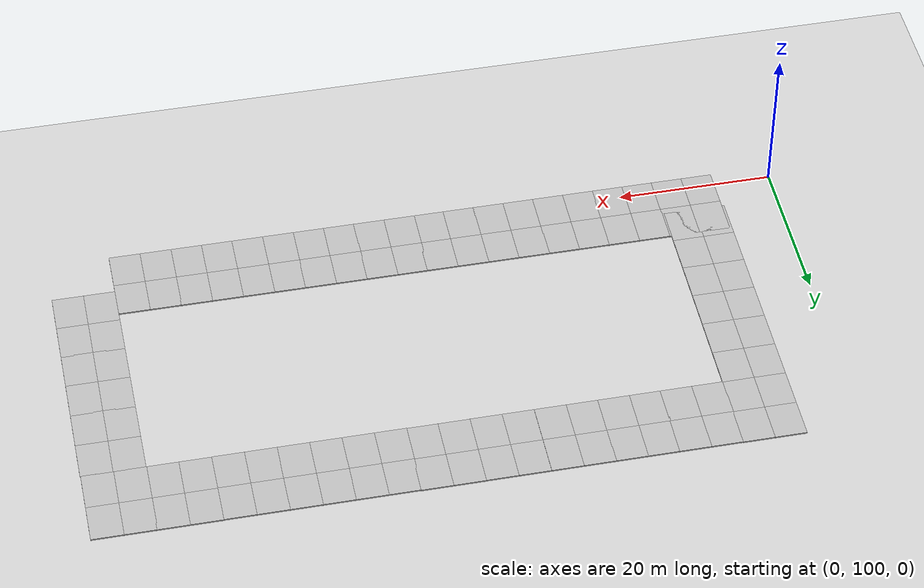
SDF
<sdf version="1.7">
 <world name="default">
  <model name="ground_plane">
   <static>1</static>
   <link name="link">
    <collision name="collision">
     <geometry><plane><normal>0 0 1</normal><size>100 100</size></plane></geometry>
     <surface>
      <contact><collide_bitmask>65535</collide_bitmask></contact>
      <friction><ode><mu>100</mu><mu2>50</mu2></ode></friction>
     </surface>
    </collision>
    <visual name="visual">
     <cast_shadows>0</cast_shadows>
     <geometry><plane><normal>0 0 1</normal><size>100 100</size></plane></geometry>
     <material>
      <script><uri>file://media/materials/scripts/gazebo.material</uri><name>Gazebo/Grey</name></script>
     </material>
    </visual>
   </link>
  </model>
  <model name="mud_box_22">
   <static>1</static>
   <link name="link">
    <collision name="collision"><geometry><box><size>8 10 0.2</size></box></geometry></collision>
    <visual name="visual_1">
     <pose>-2 2.5 0 0 -0 0</pose>
     <cast_shadows>0</cast_shadows>
     <geometry><box><size>4 5 0.2</size></box></geometry>
     <material>
      <script>
       <uri>model://mud_box/materials/scripts</uri>
       <uri>model://mud_box/materials/textures</uri>
       <name>vrc/mud</name>
      </script>
     </material>
    </visual>
    <visual name="visual_2">
     <pose>2 2.5 0 0 -0 0</pose>
     <cast_shadows>0</cast_shadows>
     <geometry><box><size>4 5 0.2</size></box></geometry>
     <material>
      <script>
       <uri>model://mud_box/materials/scripts</uri>
       <uri>model://mud_box/materials/textures</uri>
       <name>vrc/mud</name>
      </script>
     </material>
    </visual>
    <visual name="visual_3">
     <pose>2 -2.5 0 0 -0 0</pose>
     <cast_shadows>0</cast_shadows>
     <geometry><box><size>4 5 0.2</size></box></geometry>
     <material>
      <script>
       <uri>model://mud_box/materials/scripts</uri>
       <uri>model://mud_box/materials/textures</uri>
       <name>vrc/mud</name>
      </script>
     </material>
    </visual>
    <visual name="visual_4">
     <pose>-2 -2.5 0 0 -0 0</pose>
     <cast_shadows>0</cast_shadows>
     <geometry><box><size>4 5 0.2</size></box></geometry>
     <material>
      <script>
       <uri>model://mud_box/materials/scripts</uri>
       <uri>model://mud_box/materials/textures</uri>
       <name>vrc/mud</name>
      </script>
     </material>
    </visual>
   </link>
   <pose>90.5504 109.191 0 0 -0 0</pose>
  </model>
  <model name="mud_box_23">
   <static>1</static>
   <link name="link">
    <collision name="collision"><geometry><box><size>8 10 0.2</size></box></geometry></collision>
    <visual name="visual_1">
     <pose>-2 2.5 0 0 -0 0</pose>
     <cast_shadows>0</cast_shadows>
     <geometry><box><size>4 5 0.2</size></box></geometry>
     <material>
      <script>
       <uri>model://mud_box/materials/scripts</uri>
       <uri>model://mud_box/materials/textures</uri>
       <name>vrc/mud</name>
      </script>
     </material>
    </visual>
    <visual name="visual_2">
     <pose>2 2.5 0 0 -0 0</pose>
     <cast_shadows>0</cast_shadows>
     <geometry><box><size>4 5 0.2</size></box></geometry>
     <material>
      <script>
       <uri>model://mud_box/materials/scripts</uri>
       <uri>model://mud_box/materials/textures</uri>
       <name>vrc/mud</name>
      </script>
     </material>
    </visual>
    <visual name="visual_3">
     <pose>2 -2.5 0 0 -0 0</pose>
     <cast_shadows>0</cast_shadows>
     <geometry><box><size>4 5 0.2</size></box></geometry>
     <material>
      <script>
       <uri>model://mud_box/materials/scripts</uri>
       <uri>model://mud_box/materials/textures</uri>
       <name>vrc/mud</name>
      </script>
     </material>
    </visual>
    <visual name="visual_4">
     <pose>-2 -2.5 0 0 -0 0</pose>
     <cast_shadows>0</cast_shadows>
     <geometry><box><size>4 5 0.2</size></box></geometry>
     <material>
      <script>
       <uri>model://mud_box/materials/scripts</uri>
       <uri>model://mud_box/materials/textures</uri>
       <name>vrc/mud</name>
      </script>
     </material>
    </visual>
   </link>
   <pose>90.5504 119.079 0 0 -0 0</pose>
  </model>
  <model name="mud_box_24">
   <static>1</static>
   <link name="link">
    <collision name="collision"><geometry><box><size>8 10 0.2</size></box></geometry></collision>
    <visual name="visual_1">
     <pose>-2 2.5 0 0 -0 0</pose>
     <cast_shadows>0</cast_shadows>
     <geometry><box><size>4 5 0.2</size></box></geometry>
     <material>
      <script>
       <uri>model://mud_box/materials/scripts</uri>
       <uri>model://mud_box/materials/textures</uri>
       <name>vrc/mud</name>
      </script>
     </material>
    </visual>
    <visual name="visual_2">
     <pose>2 2.5 0 0 -0 0</pose>
     <cast_shadows>0</cast_shadows>
     <geometry><box><size>4 5 0.2</size></box></geometry>
     <material>
      <script>
       <uri>model://mud_box/materials/scripts</uri>
       <uri>model://mud_box/materials/textures</uri>
       <name>vrc/mud</name>
      </script>
     </material>
    </visual>
    <visual name="visual_3">
     <pose>2 -2.5 0 0 -0 0</pose>
     <cast_shadows>0</cast_shadows>
     <geometry><box><size>4 5 0.2</size></box></geometry>
     <material>
      <script>
       <uri>model://mud_box/materials/scripts</uri>
       <uri>model://mud_box/materials/textures</uri>
       <name>vrc/mud</name>
      </script>
     </material>
    </visual>
    <visual name="visual_4">
     <pose>-2 -2.5 0 0 -0 0</pose>
     <cast_shadows>0</cast_shadows>
     <geometry><box><size>4 5 0.2</size></box></geometry>
     <material>
      <script>
       <uri>model://mud_box/materials/scripts</uri>
       <uri>model://mud_box/materials/textures</uri>
       <name>vrc/mud</name>
      </script>
     </material>
    </visual>
   </link>
   <pose>90.5505 128.967 0 0 -0 0</pose>
  </model>
  <model name="mud_box_25">
   <static>1</static>
   <link name="link">
    <collision name="collision"><geometry><box><size>8 10 0.2</size></box></geometry></collision>
    <visual name="visual_1">
     <pose>-2 2.5 0 0 -0 0</pose>
     <cast_shadows>0</cast_shadows>
     <geometry><box><size>4 5 0.2</size></box></geometry>
     <material>
      <script>
       <uri>model://mud_box/materials/scripts</uri>
       <uri>model://mud_box/materials/textures</uri>
       <name>vrc/mud</name>
      </script>
     </material>
    </visual>
    <visual name="visual_2">
     <pose>2 2.5 0 0 -0 0</pose>
     <cast_shadows>0</cast_shadows>
     <geometry><box><size>4 5 0.2</size></box></geometry>
     <material>
      <script>
       <uri>model://mud_box/materials/scripts</uri>
       <uri>model://mud_box/materials/textures</uri>
       <name>vrc/mud</name>
      </script>
     </material>
    </visual>
    <visual name="visual_3">
     <pose>2 -2.5 0 0 -0 0</pose>
     <cast_shadows>0</cast_shadows>
     <geometry><box><size>4 5 0.2</size></box></geometry>
     <material>
      <script>
       <uri>model://mud_box/materials/scripts</uri>
       <uri>model://mud_box/materials/textures</uri>
       <name>vrc/mud</name>
      </script>
     </material>
    </visual>
    <visual name="visual_4">
     <pose>-2 -2.5 0 0 -0 0</pose>
     <cast_shadows>0</cast_shadows>
     <geometry><box><size>4 5 0.2</size></box></geometry>
     <material>
      <script>
       <uri>model://mud_box/materials/scripts</uri>
       <uri>model://mud_box/materials/textures</uri>
       <name>vrc/mud</name>
      </script>
     </material>
    </visual>
   </link>
   <pose>90.4905 138.933 0 0 -0 0</pose>
  </model>
  <model name="mud_box_26">
   <static>1</static>
   <link name="link">
    <collision name="collision"><geometry><box><size>8 10 0.2</size></box></geometry></collision>
    <visual name="visual_1">
     <pose>-2 2.5 0 0 -0 0</pose>
     <cast_shadows>0</cast_shadows>
     <geometry><box><size>4 5 0.2</size></box></geometry>
     <material>
      <script>
       <uri>model://mud_box/materials/scripts</uri>
       <uri>model://mud_box/materials/textures</uri>
       <name>vrc/mud</name>
      </script>
     </material>
    </visual>
    <visual name="visual_2">
     <pose>2 2.5 0 0 -0 0</pose>
     <cast_shadows>0</cast_shadows>
     <geometry><box><size>4 5 0.2</size></box></geometry>
     <material>
      <script>
       <uri>model://mud_box/materials/scripts</uri>
       <uri>model://mud_box/materials/textures</uri>
       <name>vrc/mud</name>
      </script>
     </material>
    </visual>
    <visual name="visual_3">
     <pose>2 -2.5 0 0 -0 0</pose>
     <cast_shadows>0</cast_shadows>
     <geometry><box><size>4 5 0.2</size></box></geometry>
     <material>
      <script>
       <uri>model://mud_box/materials/scripts</uri>
       <uri>model://mud_box/materials/textures</uri>
       <name>vrc/mud</name>
      </script>
     </material>
    </visual>
    <visual name="visual_4">
     <pose>-2 -2.5 0 0 -0 0</pose>
     <cast_shadows>0</cast_shadows>
     <geometry><box><size>4 5 0.2</size></box></geometry>
     <material>
      <script>
       <uri>model://mud_box/materials/scripts</uri>
       <uri>model://mud_box/materials/textures</uri>
       <name>vrc/mud</name>
      </script>
     </material>
    </visual>
   </link>
   <pose>82.5965 138.933 0 0 -0 0</pose>
  </model>
  <model name="mud_box_27">
   <static>1</static>
   <link name="link">
    <collision name="collision"><geometry><box><size>8 10 0.2</size></box></geometry></collision>
    <visual name="visual_1">
     <pose>-2 2.5 0 0 -0 0</pose>
     <cast_shadows>0</cast_shadows>
     <geometry><box><size>4 5 0.2</size></box></geometry>
     <material>
      <script>
       <uri>model://mud_box/materials/scripts</uri>
       <uri>model://mud_box/materials/textures</uri>
       <name>vrc/mud</name>
      </script>
     </material>
    </visual>
    <visual name="visual_2">
     <pose>2 2.5 0 0 -0 0</pose>
     <cast_shadows>0</cast_shadows>
     <geometry><box><size>4 5 0.2</size></box></geometry>
     <material>
      <script>
       <uri>model://mud_box/materials/scripts</uri>
       <uri>model://mud_box/materials/textures</uri>
       <name>vrc/mud</name>
      </script>
     </material>
    </visual>
    <visual name="visual_3">
     <pose>2 -2.5 0 0 -0 0</pose>
     <cast_shadows>0</cast_shadows>
     <geometry><box><size>4 5 0.2</size></box></geometry>
     <material>
      <script>
       <uri>model://mud_box/materials/scripts</uri>
       <uri>model://mud_box/materials/textures</uri>
       <name>vrc/mud</name>
      </script>
     </material>
    </visual>
    <visual name="visual_4">
     <pose>-2 -2.5 0 0 -0 0</pose>
     <cast_shadows>0</cast_shadows>
     <geometry><box><size>4 5 0.2</size></box></geometry>
     <material>
      <script>
       <uri>model://mud_box/materials/scripts</uri>
       <uri>model://mud_box/materials/textures</uri>
       <name>vrc/mud</name>
      </script>
     </material>
    </visual>
   </link>
   <pose>74.6075 138.901 0 0 -0 0</pose>
  </model>
  <model name="mud_box_28">
   <static>1</static>
   <link name="link">
    <collision name="collision"><geometry><box><size>8 10 0.2</size></box></geometry></collision>
    <visual name="visual_1">
     <pose>-2 2.5 0 0 -0 0</pose>
     <cast_shadows>0</cast_shadows>
     <geometry><box><size>4 5 0.2</size></box></geometry>
     <material>
      <script>
       <uri>model://mud_box/materials/scripts</uri>
       <uri>model://mud_box/materials/textures</uri>
       <name>vrc/mud</name>
      </script>
     </material>
    </visual>
    <visual name="visual_2">
     <pose>2 2.5 0 0 -0 0</pose>
     <cast_shadows>0</cast_shadows>
     <geometry><box><size>4 5 0.2</size></box></geometry>
     <material>
      <script>
       <uri>model://mud_box/materials/scripts</uri>
       <uri>model://mud_box/materials/textures</uri>
       <name>vrc/mud</name>
      </script>
     </material>
    </visual>
    <visual name="visual_3">
     <pose>2 -2.5 0 0 -0 0</pose>
     <cast_shadows>0</cast_shadows>
     <geometry><box><size>4 5 0.2</size></box></geometry>
     <material>
      <script>
       <uri>model://mud_box/materials/scripts</uri>
       <uri>model://mud_box/materials/textures</uri>
       <name>vrc/mud</name>
      </script>
     </material>
    </visual>
    <visual name="visual_4">
     <pose>-2 -2.5 0 0 -0 0</pose>
     <cast_shadows>0</cast_shadows>
     <geometry><box><size>4 5 0.2</size></box></geometry>
     <material>
      <script>
       <uri>model://mud_box/materials/scripts</uri>
       <uri>model://mud_box/materials/textures</uri>
       <name>vrc/mud</name>
      </script>
     </material>
    </visual>
   </link>
   <pose>66.6342 138.901 0 0 -0 0</pose>
  </model>
  <model name="mud_box_29">
   <static>1</static>
   <link name="link">
    <collision name="collision"><geometry><box><size>8 10 0.2</size></box></geometry></collision>
    <visual name="visual_1">
     <pose>-2 2.5 0 0 -0 0</pose>
     <cast_shadows>0</cast_shadows>
     <geometry><box><size>4 5 0.2</size></box></geometry>
     <material>
      <script>
       <uri>model://mud_box/materials/scripts</uri>
       <uri>model://mud_box/materials/textures</uri>
       <name>vrc/mud</name>
      </script>
     </material>
    </visual>
    <visual name="visual_2">
     <pose>2 2.5 0 0 -0 0</pose>
     <cast_shadows>0</cast_shadows>
     <geometry><box><size>4 5 0.2</size></box></geometry>
     <material>
      <script>
       <uri>model://mud_box/materials/scripts</uri>
       <uri>model://mud_box/materials/textures</uri>
       <name>vrc/mud</name>
      </script>
     </material>
    </visual>
    <visual name="visual_3">
     <pose>2 -2.5 0 0 -0 0</pose>
     <cast_shadows>0</cast_shadows>
     <geometry><box><size>4 5 0.2</size></box></geometry>
     <material>
      <script>
       <uri>model://mud_box/materials/scripts</uri>
       <uri>model://mud_box/materials/textures</uri>
       <name>vrc/mud</name>
      </script>
     </material>
    </visual>
    <visual name="visual_4">
     <pose>-2 -2.5 0 0 -0 0</pose>
     <cast_shadows>0</cast_shadows>
     <geometry><box><size>4 5 0.2</size></box></geometry>
     <material>
      <script>
       <uri>model://mud_box/materials/scripts</uri>
       <uri>model://mud_box/materials/textures</uri>
       <name>vrc/mud</name>
      </script>
     </material>
    </visual>
   </link>
   <pose>58.6609 138.901 0 0 -0 0</pose>
  </model>
  <model name="mud_box_30">
   <static>1</static>
   <link name="link">
    <collision name="collision"><geometry><box><size>8 10 0.2</size></box></geometry></collision>
    <visual name="visual_1">
     <pose>-2 2.5 0 0 -0 0</pose>
     <cast_shadows>0</cast_shadows>
     <geometry><box><size>4 5 0.2</size></box></geometry>
     <material>
      <script>
       <uri>model://mud_box/materials/scripts</uri>
       <uri>model://mud_box/materials/textures</uri>
       <name>vrc/mud</name>
      </script>
     </material>
    </visual>
    <visual name="visual_2">
     <pose>2 2.5 0 0 -0 0</pose>
     <cast_shadows>0</cast_shadows>
     <geometry><box><size>4 5 0.2</size></box></geometry>
     <material>
      <script>
       <uri>model://mud_box/materials/scripts</uri>
       <uri>model://mud_box/materials/textures</uri>
       <name>vrc/mud</name>
      </script>
     </material>
    </visual>
    <visual name="visual_3">
     <pose>2 -2.5 0 0 -0 0</pose>
     <cast_shadows>0</cast_shadows>
     <geometry><box><size>4 5 0.2</size></box></geometry>
     <material>
      <script>
       <uri>model://mud_box/materials/scripts</uri>
       <uri>model://mud_box/materials/textures</uri>
       <name>vrc/mud</name>
      </script>
     </material>
    </visual>
    <visual name="visual_4">
     <pose>-2 -2.5 0 0 -0 0</pose>
     <cast_shadows>0</cast_shadows>
     <geometry><box><size>4 5 0.2</size></box></geometry>
     <material>
      <script>
       <uri>model://mud_box/materials/scripts</uri>
       <uri>model://mud_box/materials/textures</uri>
       <name>vrc/mud</name>
      </script>
     </material>
    </visual>
   </link>
   <pose>50.8141 138.949 0 0 -0 0</pose>
  </model>
  <model name="mud_box_31">
   <static>1</static>
   <link name="link">
    <collision name="collision"><geometry><box><size>8 10 0.2</size></box></geometry></collision>
    <visual name="visual_1">
     <pose>-2 2.5 0 0 -0 0</pose>
     <cast_shadows>0</cast_shadows>
     <geometry><box><size>4 5 0.2</size></box></geometry>
     <material>
      <script>
       <uri>model://mud_box/materials/scripts</uri>
       <uri>model://mud_box/materials/textures</uri>
       <name>vrc/mud</name>
      </script>
     </material>
    </visual>
    <visual name="visual_2">
     <pose>2 2.5 0 0 -0 0</pose>
     <cast_shadows>0</cast_shadows>
     <geometry><box><size>4 5 0.2</size></box></geometry>
     <material>
      <script>
       <uri>model://mud_box/materials/scripts</uri>
       <uri>model://mud_box/materials/textures</uri>
       <name>vrc/mud</name>
      </script>
     </material>
    </visual>
    <visual name="visual_3">
     <pose>2 -2.5 0 0 -0 0</pose>
     <cast_shadows>0</cast_shadows>
     <geometry><box><size>4 5 0.2</size></box></geometry>
     <material>
      <script>
       <uri>model://mud_box/materials/scripts</uri>
       <uri>model://mud_box/materials/textures</uri>
       <name>vrc/mud</name>
      </script>
     </material>
    </visual>
    <visual name="visual_4">
     <pose>-2 -2.5 0 0 -0 0</pose>
     <cast_shadows>0</cast_shadows>
     <geometry><box><size>4 5 0.2</size></box></geometry>
     <material>
      <script>
       <uri>model://mud_box/materials/scripts</uri>
       <uri>model://mud_box/materials/textures</uri>
       <name>vrc/mud</name>
      </script>
     </material>
    </visual>
   </link>
   <pose>42.8315 138.932 0 0 -0 0</pose>
  </model>
  <model name="mud_box_32">
   <static>1</static>
   <link name="link">
    <collision name="collision"><geometry><box><size>8 10 0.2</size></box></geometry></collision>
    <visual name="visual_1">
     <pose>-2 2.5 0 0 -0 0</pose>
     <cast_shadows>0</cast_shadows>
     <geometry><box><size>4 5 0.2</size></box></geometry>
     <material>
      <script>
       <uri>model://mud_box/materials/scripts</uri>
       <uri>model://mud_box/materials/textures</uri>
       <name>vrc/mud</name>
      </script>
     </material>
    </visual>
    <visual name="visual_2">
     <pose>2 2.5 0 0 -0 0</pose>
     <cast_shadows>0</cast_shadows>
     <geometry><box><size>4 5 0.2</size></box></geometry>
     <material>
      <script>
       <uri>model://mud_box/materials/scripts</uri>
       <uri>model://mud_box/materials/textures</uri>
       <name>vrc/mud</name>
      </script>
     </material>
    </visual>
    <visual name="visual_3">
     <pose>2 -2.5 0 0 -0 0</pose>
     <cast_shadows>0</cast_shadows>
     <geometry><box><size>4 5 0.2</size></box></geometry>
     <material>
      <script>
       <uri>model://mud_box/materials/scripts</uri>
       <uri>model://mud_box/materials/textures</uri>
       <name>vrc/mud</name>
      </script>
     </material>
    </visual>
    <visual name="visual_4">
     <pose>-2 -2.5 0 0 -0 0</pose>
     <cast_shadows>0</cast_shadows>
     <geometry><box><size>4 5 0.2</size></box></geometry>
     <material>
      <script>
       <uri>model://mud_box/materials/scripts</uri>
       <uri>model://mud_box/materials/textures</uri>
       <name>vrc/mud</name>
      </script>
     </material>
    </visual>
   </link>
   <pose>34.8194 138.932 0 0 -0 0</pose>
  </model>
  <model name="mud_box_33">
   <static>1</static>
   <link name="link">
    <collision name="collision"><geometry><box><size>8 10 0.2</size></box></geometry></collision>
    <visual name="visual_1">
     <pose>-2 2.5 0 0 -0 0</pose>
     <cast_shadows>0</cast_shadows>
     <geometry><box><size>4 5 0.2</size></box></geometry>
     <material>
      <script>
       <uri>model://mud_box/materials/scripts</uri>
       <uri>model://mud_box/materials/textures</uri>
       <name>vrc/mud</name>
      </script>
     </material>
    </visual>
    <visual name="visual_2">
     <pose>2 2.5 0 0 -0 0</pose>
     <cast_shadows>0</cast_shadows>
     <geometry><box><size>4 5 0.2</size></box></geometry>
     <material>
      <script>
       <uri>model://mud_box/materials/scripts</uri>
       <uri>model://mud_box/materials/textures</uri>
       <name>vrc/mud</name>
      </script>
     </material>
    </visual>
    <visual name="visual_3">
     <pose>2 -2.5 0 0 -0 0</pose>
     <cast_shadows>0</cast_shadows>
     <geometry><box><size>4 5 0.2</size></box></geometry>
     <material>
      <script>
       <uri>model://mud_box/materials/scripts</uri>
       <uri>model://mud_box/materials/textures</uri>
       <name>vrc/mud</name>
      </script>
     </material>
    </visual>
    <visual name="visual_4">
     <pose>-2 -2.5 0 0 -0 0</pose>
     <cast_shadows>0</cast_shadows>
     <geometry><box><size>4 5 0.2</size></box></geometry>
     <material>
      <script>
       <uri>model://mud_box/materials/scripts</uri>
       <uri>model://mud_box/materials/textures</uri>
       <name>vrc/mud</name>
      </script>
     </material>
    </visual>
   </link>
   <pose>26.8757 138.932 0 0 -0 0</pose>
  </model>
  <model name="mud_box_34">
   <static>1</static>
   <link name="link">
    <collision name="collision"><geometry><box><size>8 10 0.2</size></box></geometry></collision>
    <visual name="visual_1">
     <pose>-2 2.5 0 0 -0 0</pose>
     <cast_shadows>0</cast_shadows>
     <geometry><box><size>4 5 0.2</size></box></geometry>
     <material>
      <script>
       <uri>model://mud_box/materials/scripts</uri>
       <uri>model://mud_box/materials/textures</uri>
       <name>vrc/mud</name>
      </script>
     </material>
    </visual>
    <visual name="visual_2">
     <pose>2 2.5 0 0 -0 0</pose>
     <cast_shadows>0</cast_shadows>
     <geometry><box><size>4 5 0.2</size></box></geometry>
     <material>
      <script>
       <uri>model://mud_box/materials/scripts</uri>
       <uri>model://mud_box/materials/textures</uri>
       <name>vrc/mud</name>
      </script>
     </material>
    </visual>
    <visual name="visual_3">
     <pose>2 -2.5 0 0 -0 0</pose>
     <cast_shadows>0</cast_shadows>
     <geometry><box><size>4 5 0.2</size></box></geometry>
     <material>
      <script>
       <uri>model://mud_box/materials/scripts</uri>
       <uri>model://mud_box/materials/textures</uri>
       <name>vrc/mud</name>
      </script>
     </material>
    </visual>
    <visual name="visual_4">
     <pose>-2 -2.5 0 0 -0 0</pose>
     <cast_shadows>0</cast_shadows>
     <geometry><box><size>4 5 0.2</size></box></geometry>
     <material>
      <script>
       <uri>model://mud_box/materials/scripts</uri>
       <uri>model://mud_box/materials/textures</uri>
       <name>vrc/mud</name>
      </script>
     </material>
    </visual>
   </link>
   <pose>19.0006 138.932 0 0 -0 0</pose>
  </model>
  <model name="mud_box_35">
   <static>1</static>
   <link name="link">
    <collision name="collision"><geometry><box><size>8 10 0.2</size></box></geometry></collision>
    <visual name="visual_1">
     <pose>-2 2.5 0 0 -0 0</pose>
     <cast_shadows>0</cast_shadows>
     <geometry><box><size>4 5 0.2</size></box></geometry>
     <material>
      <script>
       <uri>model://mud_box/materials/scripts</uri>
       <uri>model://mud_box/materials/textures</uri>
       <name>vrc/mud</name>
      </script>
     </material>
    </visual>
    <visual name="visual_2">
     <pose>2 2.5 0 0 -0 0</pose>
     <cast_shadows>0</cast_shadows>
     <geometry><box><size>4 5 0.2</size></box></geometry>
     <material>
      <script>
       <uri>model://mud_box/materials/scripts</uri>
       <uri>model://mud_box/materials/textures</uri>
       <name>vrc/mud</name>
      </script>
     </material>
    </visual>
    <visual name="visual_3">
     <pose>2 -2.5 0 0 -0 0</pose>
     <cast_shadows>0</cast_shadows>
     <geometry><box><size>4 5 0.2</size></box></geometry>
     <material>
      <script>
       <uri>model://mud_box/materials/scripts</uri>
       <uri>model://mud_box/materials/textures</uri>
       <name>vrc/mud</name>
      </script>
     </material>
    </visual>
    <visual name="visual_4">
     <pose>-2 -2.5 0 0 -0 0</pose>
     <cast_shadows>0</cast_shadows>
     <geometry><box><size>4 5 0.2</size></box></geometry>
     <material>
      <script>
       <uri>model://mud_box/materials/scripts</uri>
       <uri>model://mud_box/materials/textures</uri>
       <name>vrc/mud</name>
      </script>
     </material>
    </visual>
   </link>
   <pose>82.5697 103.151 0 0 -0 0</pose>
  </model>
  <model name="mud_box_36">
   <static>1</static>
   <link name="link">
    <collision name="collision"><geometry><box><size>8 10 0.2</size></box></geometry></collision>
    <visual name="visual_1">
     <pose>-2 2.5 0 0 -0 0</pose>
     <cast_shadows>0</cast_shadows>
     <geometry><box><size>4 5 0.2</size></box></geometry>
     <material>
      <script>
       <uri>model://mud_box/materials/scripts</uri>
       <uri>model://mud_box/materials/textures</uri>
       <name>vrc/mud</name>
      </script>
     </material>
    </visual>
    <visual name="visual_2">
     <pose>2 2.5 0 0 -0 0</pose>
     <cast_shadows>0</cast_shadows>
     <geometry><box><size>4 5 0.2</size></box></geometry>
     <material>
      <script>
       <uri>model://mud_box/materials/scripts</uri>
       <uri>model://mud_box/materials/textures</uri>
       <name>vrc/mud</name>
      </script>
     </material>
    </visual>
    <visual name="visual_3">
     <pose>2 -2.5 0 0 -0 0</pose>
     <cast_shadows>0</cast_shadows>
     <geometry><box><size>4 5 0.2</size></box></geometry>
     <material>
      <script>
       <uri>model://mud_box/materials/scripts</uri>
       <uri>model://mud_box/materials/textures</uri>
       <name>vrc/mud</name>
      </script>
     </material>
    </visual>
    <visual name="visual_4">
     <pose>-2 -2.5 0 0 -0 0</pose>
     <cast_shadows>0</cast_shadows>
     <geometry><box><size>4 5 0.2</size></box></geometry>
     <material>
      <script>
       <uri>model://mud_box/materials/scripts</uri>
       <uri>model://mud_box/materials/textures</uri>
       <name>vrc/mud</name>
      </script>
     </material>
    </visual>
   </link>
   <pose>74.6429 103.151 0 0 -0 0</pose>
  </model>
  <model name="mud_box_37">
   <static>1</static>
   <link name="link">
    <collision name="collision"><geometry><box><size>8 10 0.2</size></box></geometry></collision>
    <visual name="visual_1">
     <pose>-2 2.5 0 0 -0 0</pose>
     <cast_shadows>0</cast_shadows>
     <geometry><box><size>4 5 0.2</size></box></geometry>
     <material>
      <script>
       <uri>model://mud_box/materials/scripts</uri>
       <uri>model://mud_box/materials/textures</uri>
       <name>vrc/mud</name>
      </script>
     </material>
    </visual>
    <visual name="visual_2">
     <pose>2 2.5 0 0 -0 0</pose>
     <cast_shadows>0</cast_shadows>
     <geometry><box><size>4 5 0.2</size></box></geometry>
     <material>
      <script>
       <uri>model://mud_box/materials/scripts</uri>
       <uri>model://mud_box/materials/textures</uri>
       <name>vrc/mud</name>
      </script>
     </material>
    </visual>
    <visual name="visual_3">
     <pose>2 -2.5 0 0 -0 0</pose>
     <cast_shadows>0</cast_shadows>
     <geometry><box><size>4 5 0.2</size></box></geometry>
     <material>
      <script>
       <uri>model://mud_box/materials/scripts</uri>
       <uri>model://mud_box/materials/textures</uri>
       <name>vrc/mud</name>
      </script>
     </material>
    </visual>
    <visual name="visual_4">
     <pose>-2 -2.5 0 0 -0 0</pose>
     <cast_shadows>0</cast_shadows>
     <geometry><box><size>4 5 0.2</size></box></geometry>
     <material>
      <script>
       <uri>model://mud_box/materials/scripts</uri>
       <uri>model://mud_box/materials/textures</uri>
       <name>vrc/mud</name>
      </script>
     </material>
    </visual>
   </link>
   <pose>66.7161 103.151 0 0 -0 0</pose>
  </model>
  <model name="mud_box_38">
   <static>1</static>
   <link name="link">
    <collision name="collision"><geometry><box><size>8 10 0.2</size></box></geometry></collision>
    <visual name="visual_1">
     <pose>-2 2.5 0 0 -0 0</pose>
     <cast_shadows>0</cast_shadows>
     <geometry><box><size>4 5 0.2</size></box></geometry>
     <material>
      <script>
       <uri>model://mud_box/materials/scripts</uri>
       <uri>model://mud_box/materials/textures</uri>
       <name>vrc/mud</name>
      </script>
     </material>
    </visual>
    <visual name="visual_2">
     <pose>2 2.5 0 0 -0 0</pose>
     <cast_shadows>0</cast_shadows>
     <geometry><box><size>4 5 0.2</size></box></geometry>
     <material>
      <script>
       <uri>model://mud_box/materials/scripts</uri>
       <uri>model://mud_box/materials/textures</uri>
       <name>vrc/mud</name>
      </script>
     </material>
    </visual>
    <visual name="visual_3">
     <pose>2 -2.5 0 0 -0 0</pose>
     <cast_shadows>0</cast_shadows>
     <geometry><box><size>4 5 0.2</size></box></geometry>
     <material>
      <script>
       <uri>model://mud_box/materials/scripts</uri>
       <uri>model://mud_box/materials/textures</uri>
       <name>vrc/mud</name>
      </script>
     </material>
    </visual>
    <visual name="visual_4">
     <pose>-2 -2.5 0 0 -0 0</pose>
     <cast_shadows>0</cast_shadows>
     <geometry><box><size>4 5 0.2</size></box></geometry>
     <material>
      <script>
       <uri>model://mud_box/materials/scripts</uri>
       <uri>model://mud_box/materials/textures</uri>
       <name>vrc/mud</name>
      </script>
     </material>
    </visual>
   </link>
   <pose>58.7893 103.151 0 0 -0 0</pose>
  </model>
  <model name="mud_box_39">
   <static>1</static>
   <link name="link">
    <collision name="collision"><geometry><box><size>8 10 0.2</size></box></geometry></collision>
    <visual name="visual_1">
     <pose>-2 2.5 0 0 -0 0</pose>
     <cast_shadows>0</cast_shadows>
     <geometry><box><size>4 5 0.2</size></box></geometry>
     <material>
      <script>
       <uri>model://mud_box/materials/scripts</uri>
       <uri>model://mud_box/materials/textures</uri>
       <name>vrc/mud</name>
      </script>
     </material>
    </visual>
    <visual name="visual_2">
     <pose>2 2.5 0 0 -0 0</pose>
     <cast_shadows>0</cast_shadows>
     <geometry><box><size>4 5 0.2</size></box></geometry>
     <material>
      <script>
       <uri>model://mud_box/materials/scripts</uri>
       <uri>model://mud_box/materials/textures</uri>
       <name>vrc/mud</name>
      </script>
     </material>
    </visual>
    <visual name="visual_3">
     <pose>2 -2.5 0 0 -0 0</pose>
     <cast_shadows>0</cast_shadows>
     <geometry><box><size>4 5 0.2</size></box></geometry>
     <material>
      <script>
       <uri>model://mud_box/materials/scripts</uri>
       <uri>model://mud_box/materials/textures</uri>
       <name>vrc/mud</name>
      </script>
     </material>
    </visual>
    <visual name="visual_4">
     <pose>-2 -2.5 0 0 -0 0</pose>
     <cast_shadows>0</cast_shadows>
     <geometry><box><size>4 5 0.2</size></box></geometry>
     <material>
      <script>
       <uri>model://mud_box/materials/scripts</uri>
       <uri>model://mud_box/materials/textures</uri>
       <name>vrc/mud</name>
      </script>
     </material>
    </visual>
   </link>
   <pose>50.8625 103.151 0 0 -0 0</pose>
  </model>
  <model name="mud_box_40">
   <static>1</static>
   <link name="link">
    <collision name="collision"><geometry><box><size>8 10 0.2</size></box></geometry></collision>
    <visual name="visual_1">
     <pose>-2 2.5 0 0 -0 0</pose>
     <cast_shadows>0</cast_shadows>
     <geometry><box><size>4 5 0.2</size></box></geometry>
     <material>
      <script>
       <uri>model://mud_box/materials/scripts</uri>
       <uri>model://mud_box/materials/textures</uri>
       <name>vrc/mud</name>
      </script>
     </material>
    </visual>
    <visual name="visual_2">
     <pose>2 2.5 0 0 -0 0</pose>
     <cast_shadows>0</cast_shadows>
     <geometry><box><size>4 5 0.2</size></box></geometry>
     <material>
      <script>
       <uri>model://mud_box/materials/scripts</uri>
       <uri>model://mud_box/materials/textures</uri>
       <name>vrc/mud</name>
      </script>
     </material>
    </visual>
    <visual name="visual_3">
     <pose>2 -2.5 0 0 -0 0</pose>
     <cast_shadows>0</cast_shadows>
     <geometry><box><size>4 5 0.2</size></box></geometry>
     <material>
      <script>
       <uri>model://mud_box/materials/scripts</uri>
       <uri>model://mud_box/materials/textures</uri>
       <name>vrc/mud</name>
      </script>
     </material>
    </visual>
    <visual name="visual_4">
     <pose>-2 -2.5 0 0 -0 0</pose>
     <cast_shadows>0</cast_shadows>
     <geometry><box><size>4 5 0.2</size></box></geometry>
     <material>
      <script>
       <uri>model://mud_box/materials/scripts</uri>
       <uri>model://mud_box/materials/textures</uri>
       <name>vrc/mud</name>
      </script>
     </material>
    </visual>
   </link>
   <pose>43.0825 103.151 0 0 -0 0</pose>
  </model>
  <model name="mud_box_41">
   <static>1</static>
   <link name="link">
    <collision name="collision"><geometry><box><size>8 10 0.2</size></box></geometry></collision>
    <visual name="visual_1">
     <pose>-2 2.5 0 0 -0 0</pose>
     <cast_shadows>0</cast_shadows>
     <geometry><box><size>4 5 0.2</size></box></geometry>
     <material>
      <script>
       <uri>model://mud_box/materials/scripts</uri>
       <uri>model://mud_box/materials/textures</uri>
       <name>vrc/mud</name>
      </script>
     </material>
    </visual>
    <visual name="visual_2">
     <pose>2 2.5 0 0 -0 0</pose>
     <cast_shadows>0</cast_shadows>
     <geometry><box><size>4 5 0.2</size></box></geometry>
     <material>
      <script>
       <uri>model://mud_box/materials/scripts</uri>
       <uri>model://mud_box/materials/textures</uri>
       <name>vrc/mud</name>
      </script>
     </material>
    </visual>
    <visual name="visual_3">
     <pose>2 -2.5 0 0 -0 0</pose>
     <cast_shadows>0</cast_shadows>
     <geometry><box><size>4 5 0.2</size></box></geometry>
     <material>
      <script>
       <uri>model://mud_box/materials/scripts</uri>
       <uri>model://mud_box/materials/textures</uri>
       <name>vrc/mud</name>
      </script>
     </material>
    </visual>
    <visual name="visual_4">
     <pose>-2 -2.5 0 0 -0 0</pose>
     <cast_shadows>0</cast_shadows>
     <geometry><box><size>4 5 0.2</size></box></geometry>
     <material>
      <script>
       <uri>model://mud_box/materials/scripts</uri>
       <uri>model://mud_box/materials/textures</uri>
       <name>vrc/mud</name>
      </script>
     </material>
    </visual>
   </link>
   <pose>35.1558 103.151 0 0 -0 0</pose>
  </model>
  <model name="mud_box_42">
   <static>1</static>
   <link name="link">
    <collision name="collision"><geometry><box><size>8 10 0.2</size></box></geometry></collision>
    <visual name="visual_1">
     <pose>-2 2.5 0 0 -0 0</pose>
     <cast_shadows>0</cast_shadows>
     <geometry><box><size>4 5 0.2</size></box></geometry>
     <material>
      <script>
       <uri>model://mud_box/materials/scripts</uri>
       <uri>model://mud_box/materials/textures</uri>
       <name>vrc/mud</name>
      </script>
     </material>
    </visual>
    <visual name="visual_2">
     <pose>2 2.5 0 0 -0 0</pose>
     <cast_shadows>0</cast_shadows>
     <geometry><box><size>4 5 0.2</size></box></geometry>
     <material>
      <script>
       <uri>model://mud_box/materials/scripts</uri>
       <uri>model://mud_box/materials/textures</uri>
       <name>vrc/mud</name>
      </script>
     </material>
    </visual>
    <visual name="visual_3">
     <pose>2 -2.5 0 0 -0 0</pose>
     <cast_shadows>0</cast_shadows>
     <geometry><box><size>4 5 0.2</size></box></geometry>
     <material>
      <script>
       <uri>model://mud_box/materials/scripts</uri>
       <uri>model://mud_box/materials/textures</uri>
       <name>vrc/mud</name>
      </script>
     </material>
    </visual>
    <visual name="visual_4">
     <pose>-2 -2.5 0 0 -0 0</pose>
     <cast_shadows>0</cast_shadows>
     <geometry><box><size>4 5 0.2</size></box></geometry>
     <material>
      <script>
       <uri>model://mud_box/materials/scripts</uri>
       <uri>model://mud_box/materials/textures</uri>
       <name>vrc/mud</name>
      </script>
     </material>
    </visual>
   </link>
   <pose>27.229 103.151 0 0 -0 0</pose>
  </model>
  <model name="mud_box_43">
   <static>1</static>
   <link name="link">
    <collision name="collision"><geometry><box><size>8 10 0.2</size></box></geometry></collision>
    <visual name="visual_1">
     <pose>-2 2.5 0 0 -0 0</pose>
     <cast_shadows>0</cast_shadows>
     <geometry><box><size>4 5 0.2</size></box></geometry>
     <material>
      <script>
       <uri>model://mud_box/materials/scripts</uri>
       <uri>model://mud_box/materials/textures</uri>
       <name>vrc/mud</name>
      </script>
     </material>
    </visual>
    <visual name="visual_2">
     <pose>2 2.5 0 0 -0 0</pose>
     <cast_shadows>0</cast_shadows>
     <geometry><box><size>4 5 0.2</size></box></geometry>
     <material>
      <script>
       <uri>model://mud_box/materials/scripts</uri>
       <uri>model://mud_box/materials/textures</uri>
       <name>vrc/mud</name>
      </script>
     </material>
    </visual>
    <visual name="visual_3">
     <pose>2 -2.5 0 0 -0 0</pose>
     <cast_shadows>0</cast_shadows>
     <geometry><box><size>4 5 0.2</size></box></geometry>
     <material>
      <script>
       <uri>model://mud_box/materials/scripts</uri>
       <uri>model://mud_box/materials/textures</uri>
       <name>vrc/mud</name>
      </script>
     </material>
    </visual>
    <visual name="visual_4">
     <pose>-2 -2.5 0 0 -0 0</pose>
     <cast_shadows>0</cast_shadows>
     <geometry><box><size>4 5 0.2</size></box></geometry>
     <material>
      <script>
       <uri>model://mud_box/materials/scripts</uri>
       <uri>model://mud_box/materials/textures</uri>
       <name>vrc/mud</name>
      </script>
     </material>
    </visual>
   </link>
   <pose>19.3022 103.151 0 0 -0 0</pose>
  </model>
  <model name="mud_box_44">
   <static>1</static>
   <link name="link">
    <collision name="collision"><geometry><box><size>8 10 0.2</size></box></geometry></collision>
    <visual name="visual_1">
     <pose>-2 2.5 0 0 -0 0</pose>
     <cast_shadows>0</cast_shadows>
     <geometry><box><size>4 5 0.2</size></box></geometry>
     <material>
      <script>
       <uri>model://mud_box/materials/scripts</uri>
       <uri>model://mud_box/materials/textures</uri>
       <name>vrc/mud</name>
      </script>
     </material>
    </visual>
    <visual name="visual_2">
     <pose>2 2.5 0 0 -0 0</pose>
     <cast_shadows>0</cast_shadows>
     <geometry><box><size>4 5 0.2</size></box></geometry>
     <material>
      <script>
       <uri>model://mud_box/materials/scripts</uri>
       <uri>model://mud_box/materials/textures</uri>
       <name>vrc/mud</name>
      </script>
     </material>
    </visual>
    <visual name="visual_3">
     <pose>2 -2.5 0 0 -0 0</pose>
     <cast_shadows>0</cast_shadows>
     <geometry><box><size>4 5 0.2</size></box></geometry>
     <material>
      <script>
       <uri>model://mud_box/materials/scripts</uri>
       <uri>model://mud_box/materials/textures</uri>
       <name>vrc/mud</name>
      </script>
     </material>
    </visual>
    <visual name="visual_4">
     <pose>-2 -2.5 0 0 -0 0</pose>
     <cast_shadows>0</cast_shadows>
     <geometry><box><size>4 5 0.2</size></box></geometry>
     <material>
      <script>
       <uri>model://mud_box/materials/scripts</uri>
       <uri>model://mud_box/materials/textures</uri>
       <name>vrc/mud</name>
      </script>
     </material>
    </visual>
   </link>
   <pose>11.0818 138.969 0 0 -0 0</pose>
  </model>
  <model name="mud_box_45">
   <static>1</static>
   <link name="link">
    <collision name="collision"><geometry><box><size>8 10 0.2</size></box></geometry></collision>
    <visual name="visual_1">
     <pose>-2 2.5 0 0 -0 0</pose>
     <cast_shadows>0</cast_shadows>
     <geometry><box><size>4 5 0.2</size></box></geometry>
     <material>
      <script>
       <uri>model://mud_box/materials/scripts</uri>
       <uri>model://mud_box/materials/textures</uri>
       <name>vrc/mud</name>
      </script>
     </material>
    </visual>
    <visual name="visual_2">
     <pose>2 2.5 0 0 -0 0</pose>
     <cast_shadows>0</cast_shadows>
     <geometry><box><size>4 5 0.2</size></box></geometry>
     <material>
      <script>
       <uri>model://mud_box/materials/scripts</uri>
       <uri>model://mud_box/materials/textures</uri>
       <name>vrc/mud</name>
      </script>
     </material>
    </visual>
    <visual name="visual_3">
     <pose>2 -2.5 0 0 -0 0</pose>
     <cast_shadows>0</cast_shadows>
     <geometry><box><size>4 5 0.2</size></box></geometry>
     <material>
      <script>
       <uri>model://mud_box/materials/scripts</uri>
       <uri>model://mud_box/materials/textures</uri>
       <name>vrc/mud</name>
      </script>
     </material>
    </visual>
    <visual name="visual_4">
     <pose>-2 -2.5 0 0 -0 0</pose>
     <cast_shadows>0</cast_shadows>
     <geometry><box><size>4 5 0.2</size></box></geometry>
     <material>
      <script>
       <uri>model://mud_box/materials/scripts</uri>
       <uri>model://mud_box/materials/textures</uri>
       <name>vrc/mud</name>
      </script>
     </material>
    </visual>
   </link>
   <pose>11.0818 128.987 0 0 -0 0</pose>
  </model>
  <model name="mud_box_46">
   <static>1</static>
   <link name="link">
    <collision name="collision"><geometry><box><size>8 10 0.2</size></box></geometry></collision>
    <visual name="visual_1">
     <pose>-2 2.5 0 0 -0 0</pose>
     <cast_shadows>0</cast_shadows>
     <geometry><box><size>4 5 0.2</size></box></geometry>
     <material>
      <script>
       <uri>model://mud_box/materials/scripts</uri>
       <uri>model://mud_box/materials/textures</uri>
       <name>vrc/mud</name>
      </script>
     </material>
    </visual>
    <visual name="visual_2">
     <pose>2 2.5 0 0 -0 0</pose>
     <cast_shadows>0</cast_shadows>
     <geometry><box><size>4 5 0.2</size></box></geometry>
     <material>
      <script>
       <uri>model://mud_box/materials/scripts</uri>
       <uri>model://mud_box/materials/textures</uri>
       <name>vrc/mud</name>
      </script>
     </material>
    </visual>
    <visual name="visual_3">
     <pose>2 -2.5 0 0 -0 0</pose>
     <cast_shadows>0</cast_shadows>
     <geometry><box><size>4 5 0.2</size></box></geometry>
     <material>
      <script>
       <uri>model://mud_box/materials/scripts</uri>
       <uri>model://mud_box/materials/textures</uri>
       <name>vrc/mud</name>
      </script>
     </material>
    </visual>
    <visual name="visual_4">
     <pose>-2 -2.5 0 0 -0 0</pose>
     <cast_shadows>0</cast_shadows>
     <geometry><box><size>4 5 0.2</size></box></geometry>
     <material>
      <script>
       <uri>model://mud_box/materials/scripts</uri>
       <uri>model://mud_box/materials/textures</uri>
       <name>vrc/mud</name>
      </script>
     </material>
    </visual>
   </link>
   <pose>11.0818 119.005 0 0 -0 0</pose>
  </model>
  <model name="mud_box_47">
   <static>1</static>
   <link name="link">
    <collision name="collision"><geometry><box><size>8 10 0.2</size></box></geometry></collision>
    <visual name="visual_1">
     <pose>-2 2.5 0 0 -0 0</pose>
     <cast_shadows>0</cast_shadows>
     <geometry><box><size>4 5 0.2</size></box></geometry>
     <material>
      <script>
       <uri>model://mud_box/materials/scripts</uri>
       <uri>model://mud_box/materials/textures</uri>
       <name>vrc/mud</name>
      </script>
     </material>
    </visual>
    <visual name="visual_2">
     <pose>2 2.5 0 0 -0 0</pose>
     <cast_shadows>0</cast_shadows>
     <geometry><box><size>4 5 0.2</size></box></geometry>
     <material>
      <script>
       <uri>model://mud_box/materials/scripts</uri>
       <uri>model://mud_box/materials/textures</uri>
       <name>vrc/mud</name>
      </script>
     </material>
    </visual>
    <visual name="visual_3">
     <pose>2 -2.5 0 0 -0 0</pose>
     <cast_shadows>0</cast_shadows>
     <geometry><box><size>4 5 0.2</size></box></geometry>
     <material>
      <script>
       <uri>model://mud_box/materials/scripts</uri>
       <uri>model://mud_box/materials/textures</uri>
       <name>vrc/mud</name>
      </script>
     </material>
    </visual>
    <visual name="visual_4">
     <pose>-2 -2.5 0 0 -0 0</pose>
     <cast_shadows>0</cast_shadows>
     <geometry><box><size>4 5 0.2</size></box></geometry>
     <material>
      <script>
       <uri>model://mud_box/materials/scripts</uri>
       <uri>model://mud_box/materials/textures</uri>
       <name>vrc/mud</name>
      </script>
     </material>
    </visual>
   </link>
   <pose>11.0818 109.023 0 0 -0 0</pose>
  </model>
  <model name="mud_box_48">
   <static>1</static>
   <link name="link">
    <collision name="collision"><geometry><box><size>8 10 0.2</size></box></geometry></collision>
    <visual name="visual_1">
     <pose>-2 2.5 0 0 -0 0</pose>
     <cast_shadows>0</cast_shadows>
     <geometry><box><size>4 5 0.2</size></box></geometry>
     <material>
      <script>
       <uri>model://mud_box/materials/scripts</uri>
       <uri>model://mud_box/materials/textures</uri>
       <name>vrc/mud</name>
      </script>
     </material>
    </visual>
    <visual name="visual_2">
     <pose>2 2.5 0 0 -0 0</pose>
     <cast_shadows>0</cast_shadows>
     <geometry><box><size>4 5 0.2</size></box></geometry>
     <material>
      <script>
       <uri>model://mud_box/materials/scripts</uri>
       <uri>model://mud_box/materials/textures</uri>
       <name>vrc/mud</name>
      </script>
     </material>
    </visual>
    <visual name="visual_3">
     <pose>2 -2.5 0 0 -0 0</pose>
     <cast_shadows>0</cast_shadows>
     <geometry><box><size>4 5 0.2</size></box></geometry>
     <material>
      <script>
       <uri>model://mud_box/materials/scripts</uri>
       <uri>model://mud_box/materials/textures</uri>
       <name>vrc/mud</name>
      </script>
     </material>
    </visual>
    <visual name="visual_4">
     <pose>-2 -2.5 0 0 -0 0</pose>
     <cast_shadows>0</cast_shadows>
     <geometry><box><size>4 5 0.2</size></box></geometry>
     <material>
      <script>
       <uri>model://mud_box/materials/scripts</uri>
       <uri>model://mud_box/materials/textures</uri>
       <name>vrc/mud</name>
      </script>
     </material>
    </visual>
   </link>
   <pose>11.3754 103.151 0 0 -0 0</pose>
  </model>
 </world>
</sdf>
